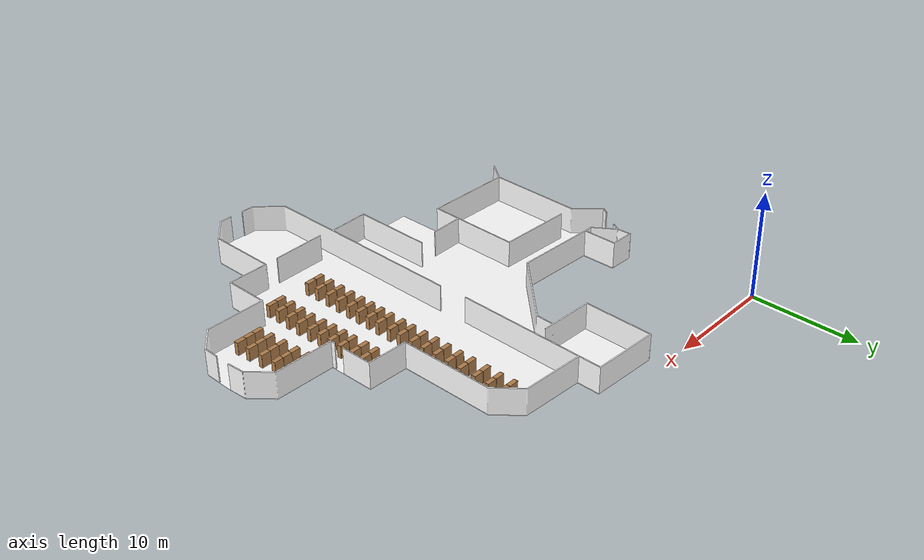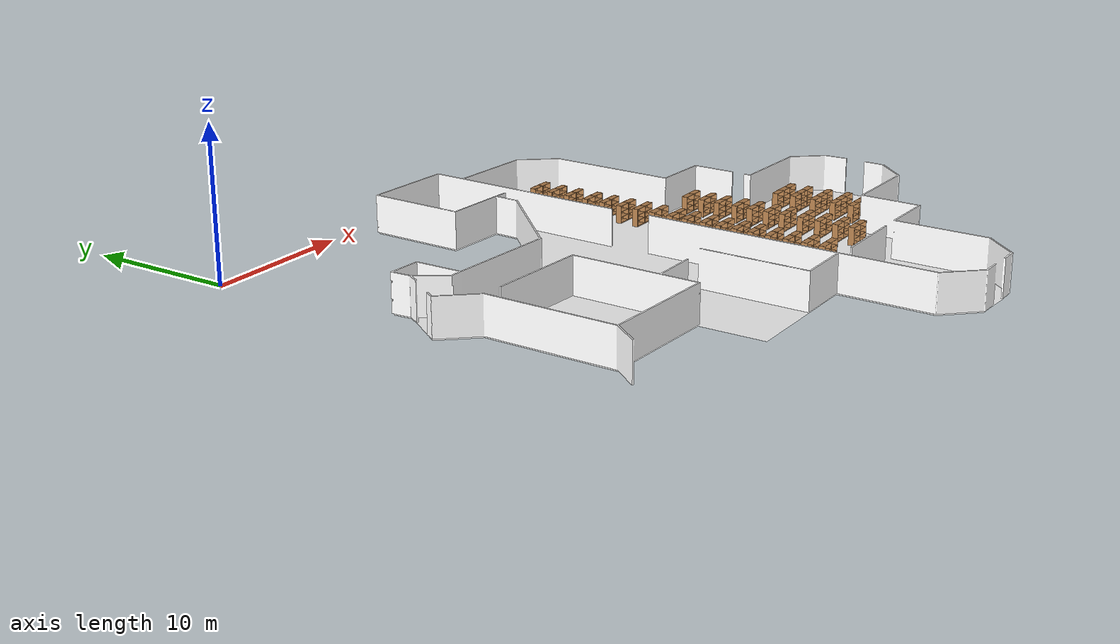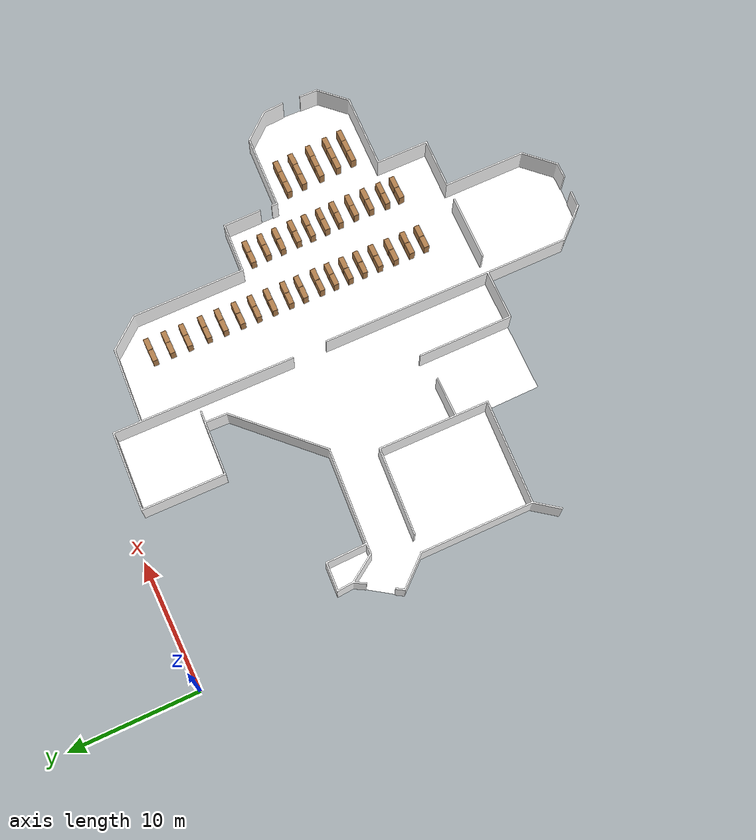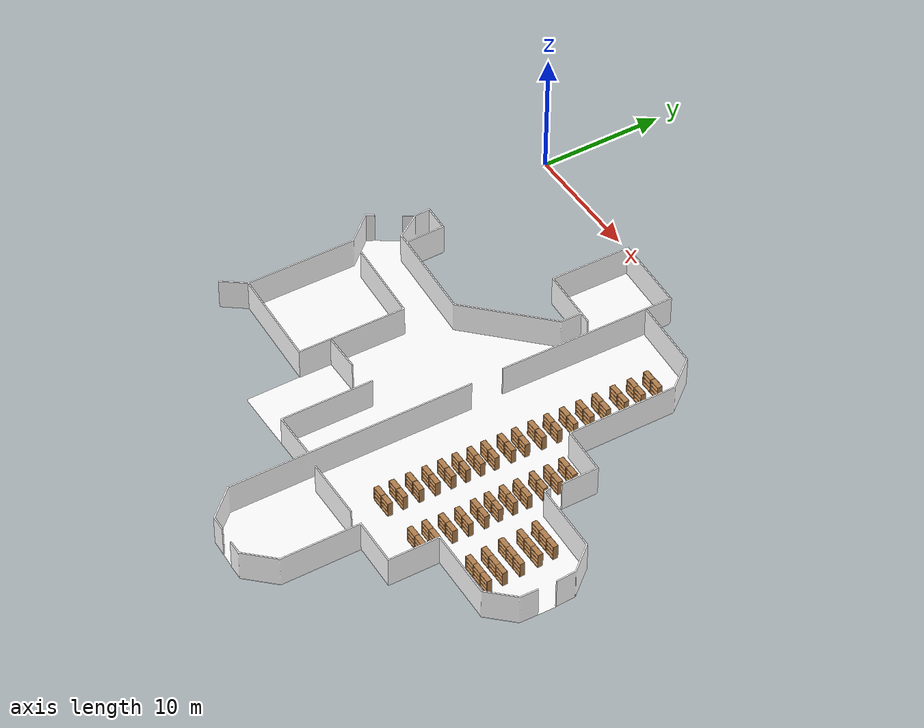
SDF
<?xml version="1.0" ?>

<sdf version="1.7">
  <world name="world">
    <scene>
      <ambient>0.8 0.8 0.8 1.0</ambient>
      <background>0 0 0</background>
      <grid>false</grid>
    </scene>
    <include>
      <uri>model://sun</uri>
    </include>
    <gui>
      <camera name="gui_camera">
        <pose>18.758678766187817 -40.49960842138499 10 0 0.6 1.57</pose>
      </camera>
      <plugin name="toggle_charging" filename="libtoggle_charging.so" />
      <plugin name="toggle_floors" filename="libtoggle_floors.so">
        <floor name="L1" model_name="libr_L1">
          <model name="OpenRobotics/Bookshelf" />
          <model name="OpenRobotics/Bookshelf_2" />
          <model name="OpenRobotics/Bookshelf_3" />
          <model name="OpenRobotics/Bookshelf_4" />
          <model name="OpenRobotics/Bookshelf_5" />
          <model name="OpenRobotics/Bookshelf_6" />
          <model name="OpenRobotics/Bookshelf_7" />
          <model name="OpenRobotics/Bookshelf_8" />
          <model name="OpenRobotics/Bookshelf_9" />
          <model name="OpenRobotics/Bookshelf_10" />
          <model name="OpenRobotics/Bookshelf_11" />
          <model name="OpenRobotics/Bookshelf_12" />
          <model name="OpenRobotics/Bookshelf_13" />
          <model name="OpenRobotics/Bookshelf_14" />
          <model name="OpenRobotics/Bookshelf_15" />
          <model name="OpenRobotics/Bookshelf_16" />
          <model name="OpenRobotics/Bookshelf_17" />
          <model name="OpenRobotics/Bookshelf_18" />
          <model name="OpenRobotics/Bookshelf_19" />
          <model name="OpenRobotics/Bookshelf_20" />
          <model name="OpenRobotics/Bookshelf_21" />
          <model name="OpenRobotics/Bookshelf_22" />
          <model name="OpenRobotics/Bookshelf_23" />
          <model name="OpenRobotics/Bookshelf_24" />
          <model name="OpenRobotics/Bookshelf_25" />
          <model name="OpenRobotics/Bookshelf_26" />
          <model name="OpenRobotics/Bookshelf_27" />
          <model name="OpenRobotics/Bookshelf_28" />
          <model name="OpenRobotics/Bookshelf_29" />
          <model name="OpenRobotics/Bookshelf_30" />
          <model name="OpenRobotics/Bookshelf_31" />
          <model name="OpenRobotics/Bookshelf_32" />
          <model name="OpenRobotics/Bookshelf_33" />
          <model name="OpenRobotics/Bookshelf_34" />
          <model name="OpenRobotics/Bookshelf_35" />
          <model name="OpenRobotics/Bookshelf_36" />
          <model name="OpenRobotics/Bookshelf_37" />
          <model name="OpenRobotics/Bookshelf_38" />
          <model name="OpenRobotics/Bookshelf_39" />
          <model name="OpenRobotics/Bookshelf_40" />
          <model name="OpenRobotics/Bookshelf_41" />
          <model name="OpenRobotics/Bookshelf_42" />
          <model name="OpenRobotics/Bookshelf_43" />
          <model name="OpenRobotics/Bookshelf_44" />
          <model name="OpenRobotics/Bookshelf_45" />
          <model name="OpenRobotics/Bookshelf_46" />
          <model name="OpenRobotics/Bookshelf_47" />
          <model name="OpenRobotics/Bookshelf_48" />
          <model name="OpenRobotics/Bookshelf_49" />
          <model name="OpenRobotics/Bookshelf_50" />
          <model name="OpenRobotics/Bookshelf_51" />
          <model name="OpenRobotics/Bookshelf_52" />
          <model name="OpenRobotics/Bookshelf_53" />
          <model name="OpenRobotics/Bookshelf_54" />
          <model name="OpenRobotics/Bookshelf_55" />
          <model name="OpenRobotics/Bookshelf_56" />
          <model name="OpenRobotics/Bookshelf_57" />
          <model name="OpenRobotics/Bookshelf_58" />
          <model name="OpenRobotics/Bookshelf_59" />
          <model name="OpenRobotics/Bookshelf_60" />
          <model name="OpenRobotics/Bookshelf_61" />
          <model name="OpenRobotics/Bookshelf_62" />
          <model name="OpenRobotics/Bookshelf_63" />
          <model name="OpenRobotics/Bookshelf_64" />
          <model name="OpenRobotics/Bookshelf_65" />
          <model name="OpenRobotics/Bookshelf_66" />
          <model name="OpenRobotics/Bookshelf_67" />
          <model name="OpenRobotics/Bookshelf_68" />
          <model name="OpenRobotics/Bookshelf_69" />
          <model name="OpenRobotics/Bookshelf_70" />
          <model name="OpenRobotics/Bookshelf_71" />
          <model name="OpenRobotics/Bookshelf_72" />
          <model name="OpenRobotics/Bookshelf_73" />
        </floor>
      </plugin>
    </gui>
    <include>
      <name>OpenRobotics/Bookshelf</name>
      <uri>model://Bookshelf</uri>
      <pose>28.467041090443733 -15.898008054667084 0.0 0 0 0.0</pose>
      <static>True</static>
    </include>
    <include>
      <name>OpenRobotics/Bookshelf_2</name>
      <uri>model://Bookshelf</uri>
      <pose>28.510822227900935 -17.1345104671964 0.0 0 0 0.0</pose>
      <static>True</static>
    </include>
    <include>
      <name>OpenRobotics/Bookshelf_3</name>
      <uri>model://Bookshelf</uri>
      <pose>28.505506946037123 -18.310516579565203 0.0 0 0 0.0</pose>
      <static>True</static>
    </include>
    <include>
      <name>OpenRobotics/Bookshelf_4</name>
      <uri>model://Bookshelf</uri>
      <pose>28.557191068370784 -19.618425607659702 0.0 0 0 0.0</pose>
      <static>True</static>
    </include>
    <include>
      <name>OpenRobotics/Bookshelf_5</name>
      <uri>model://Bookshelf</uri>
      <pose>28.53998634023265 -20.75428735437286 0.0 0 0 0.0</pose>
      <static>True</static>
    </include>
    <include>
      <name>OpenRobotics/Bookshelf_6</name>
      <uri>model://Bookshelf</uri>
      <pose>28.547609573432066 -21.934070114381743 0.0 0 0 0.0</pose>
      <static>True</static>
    </include>
    <include>
      <name>OpenRobotics/Bookshelf_7</name>
      <uri>model://Bookshelf</uri>
      <pose>28.608805252785185 -23.06608527553556 0.0 0 0 0.0035</pose>
      <static>True</static>
    </include>
    <include>
      <name>OpenRobotics/Bookshelf_8</name>
      <uri>model://Bookshelf</uri>
      <pose>28.639368123502116 -24.351054666112546 0.0 0 0 -0.0078</pose>
      <static>True</static>
    </include>
    <include>
      <name>OpenRobotics/Bookshelf_9</name>
      <uri>model://Bookshelf</uri>
      <pose>28.608805252785185 -25.605461185972604 0.0 0 0 0.006</pose>
      <static>True</static>
    </include>
    <include>
      <name>OpenRobotics/Bookshelf_10</name>
      <uri>model://Bookshelf</uri>
      <pose>28.547609573432066 -26.89043057654959 0.0 0 0 -0.0045</pose>
      <static>True</static>
    </include>
    <include>
      <name>OpenRobotics/Bookshelf_11</name>
      <uri>model://Bookshelf</uri>
      <pose>28.547609573432066 -28.02244573770341 0.0 0 0 -0.0025</pose>
      <static>True</static>
    </include>
    <include>
      <name>OpenRobotics/Bookshelf_12</name>
      <uri>model://Bookshelf</uri>
      <pose>31.55927625263667 -20.608256978956504 0.0 0 0 0.0</pose>
      <static>True</static>
    </include>
    <include>
      <name>OpenRobotics/Bookshelf_13</name>
      <uri>model://Bookshelf</uri>
      <pose>31.670897171776762 -21.87336400046345 0.0 0 0 0.0</pose>
      <static>True</static>
    </include>
    <include>
      <name>OpenRobotics/Bookshelf_14</name>
      <uri>model://Bookshelf</uri>
      <pose>31.70810414482346 -23.324505887203877 0.0 0 0 0.0</pose>
      <static>True</static>
    </include>
    <include>
      <name>OpenRobotics/Bookshelf_15</name>
      <uri>model://Bookshelf</uri>
      <pose>31.782518090916852 -24.73844080089761 0.0 0 0 0.0</pose>
      <static>True</static>
    </include>
    <include>
      <name>OpenRobotics/Bookshelf_16</name>
      <uri>model://Bookshelf</uri>
      <pose>31.857001974929506 -26.003547822404556 0.0 0 0 0.0</pose>
      <static>True</static>
    </include>
    <include>
      <name>OpenRobotics/Bookshelf_17</name>
      <uri>model://Bookshelf</uri>
      <pose>32.45231354367665 -20.608256978956504 0.0 0 0 0.0</pose>
      <static>True</static>
    </include>
    <include>
      <name>OpenRobotics/Bookshelf_18</name>
      <uri>model://Bookshelf</uri>
      <pose>32.52672748977004 -21.87336400046345 0.0 0 0 0.0</pose>
      <static>True</static>
    </include>
    <include>
      <name>OpenRobotics/Bookshelf_19</name>
      <uri>model://Bookshelf</uri>
      <pose>32.60114143586344 -23.324505887203877 0.0 0 0 0.0</pose>
      <static>True</static>
    </include>
    <include>
      <name>OpenRobotics/Bookshelf_20</name>
      <uri>model://Bookshelf</uri>
      <pose>32.67555538195683 -24.73844080089761 0.0 0 0 0.0</pose>
      <static>True</static>
    </include>
    <include>
      <name>OpenRobotics/Bookshelf_21</name>
      <uri>model://Bookshelf</uri>
      <pose>32.74996932805022 -26.003547822404556 0.0 0 0 0.0</pose>
      <static>True</static>
    </include>
    <include>
      <name>OpenRobotics/Bookshelf_22</name>
      <uri>model://Bookshelf</uri>
      <pose>33.34535083471663 -20.608256978956504 0.0 0 0 0.0</pose>
      <static>True</static>
    </include>
    <include>
      <name>OpenRobotics/Bookshelf_23</name>
      <uri>model://Bookshelf</uri>
      <pose>33.41976478081002 -21.87336400046345 0.0 0 0 0.037</pose>
      <static>True</static>
    </include>
    <include>
      <name>OpenRobotics/Bookshelf_24</name>
      <uri>model://Bookshelf</uri>
      <pose>33.494178726903414 -23.324505887203877 0.0 0 0 0.0</pose>
      <static>True</static>
    </include>
    <include>
      <name>OpenRobotics/Bookshelf_25</name>
      <uri>model://Bookshelf</uri>
      <pose>33.56859267299681 -24.73844080089761 0.0 0 0 0.0</pose>
      <static>True</static>
    </include>
    <include>
      <name>OpenRobotics/Bookshelf_26</name>
      <uri>model://Bookshelf</uri>
      <pose>33.6430066190902 -26.003547822404556 0.0 0 0 0.0</pose>
      <static>True</static>
    </include>
    <include>
      <name>OpenRobotics/Bookshelf_27</name>
      <uri>model://Bookshelf</uri>
      <pose>23.45130333482354 -17.12653754440068 0.0 0 0 -0.0129</pose>
      <static>True</static>
    </include>
    <include>
      <name>OpenRobotics/Bookshelf_28</name>
      <uri>model://Bookshelf</uri>
      <pose>24.377561137512355 -17.143672334619552 0.0 0 0 -0.0167</pose>
      <static>True</static>
    </include>
    <include>
      <name>OpenRobotics/Bookshelf_29</name>
      <uri>model://Bookshelf</uri>
      <pose>23.42689500100155 -18.265896187076873 0.0 0 0 -0.0059</pose>
      <static>True</static>
    </include>
    <include>
      <name>OpenRobotics/Bookshelf_30</name>
      <uri>model://Bookshelf</uri>
      <pose>24.318883223252623 -20.727151441699707 0.0 0 0 0.0</pose>
      <static>True</static>
    </include>
    <include>
      <name>OpenRobotics/Bookshelf_31</name>
      <uri>model://Bookshelf</uri>
      <pose>24.30601464610865 -21.893925748726097 0.0 0 0 -0.0173</pose>
      <static>True</static>
    </include>
    <include>
      <name>OpenRobotics/Bookshelf_32</name>
      <uri>model://Bookshelf</uri>
      <pose>24.276780595857677 -24.300069922971492 0.0 0 0 -0.006</pose>
      <static>True</static>
    </include>
    <include>
      <name>OpenRobotics/Bookshelf_33</name>
      <uri>model://Bookshelf</uri>
      <pose>24.21999100541798 -26.846369687415347 0.0 0 0 -0.0057</pose>
      <static>True</static>
    </include>
    <include>
      <name>OpenRobotics/Bookshelf_34</name>
      <uri>model://Bookshelf</uri>
      <pose>24.28426395321857 -23.04909036115521 0.0 0 0 0.001</pose>
      <static>True</static>
    </include>
    <include>
      <name>OpenRobotics/Bookshelf_35</name>
      <uri>model://Bookshelf</uri>
      <pose>24.23257983088491 -25.56063097972649 0.0 0 0 -0.0217</pose>
      <static>True</static>
    </include>
    <include>
      <name>OpenRobotics/Bookshelf_36</name>
      <uri>model://Bookshelf</uri>
      <pose>24.402319160930645 -14.532050553586197 0.0 0 0 0.0</pose>
      <static>True</static>
    </include>
    <include>
      <name>OpenRobotics/Bookshelf_37</name>
      <uri>model://Bookshelf</uri>
      <pose>24.38616350158142 -15.805759939162211 0.0 0 0 0.0</pose>
      <static>True</static>
    </include>
    <include>
      <name>OpenRobotics/Bookshelf_38</name>
      <uri>model://Bookshelf</uri>
      <pose>24.42525879844816 -13.24316463953061 0.0 0 0 0.0</pose>
      <static>True</static>
    </include>
    <include>
      <name>OpenRobotics/Bookshelf_39</name>
      <uri>model://Bookshelf</uri>
      <pose>24.45512228997248 -11.899027769259066 0.0 0 0 0.0</pose>
      <static>True</static>
    </include>
    <include>
      <name>OpenRobotics/Bookshelf_40</name>
      <uri>model://Bookshelf</uri>
      <pose>24.47008900469427 -10.569857613709312 0.0 0 0 0.0</pose>
      <static>True</static>
    </include>
    <include>
      <name>OpenRobotics/Bookshelf_41</name>
      <uri>model://Bookshelf</uri>
      <pose>24.477991989570732 -9.067381294231522 0.0 0 0 0.0</pose>
      <static>True</static>
    </include>
    <include>
      <name>OpenRobotics/Bookshelf_42</name>
      <uri>model://Bookshelf</uri>
      <pose>24.505967157275016 -7.686946643863669 0.0 0 0 0.0</pose>
      <static>True</static>
    </include>
    <include>
      <name>OpenRobotics/Bookshelf_43</name>
      <uri>model://Bookshelf</uri>
      <pose>24.21999100541798 -28.043916678916446 0.0 0 0 0.0</pose>
      <static>True</static>
    </include>
    <include>
      <name>OpenRobotics/Bookshelf_44</name>
      <uri>model://Bookshelf</uri>
      <pose>23.599991351171806 -7.686946643863669 0.0 0 0 0.0</pose>
      <static>True</static>
    </include>
    <include>
      <name>OpenRobotics/Bookshelf_45</name>
      <uri>model://Bookshelf</uri>
      <pose>23.55418201405604 -9.067381294231522 0.0 0 0 0.0</pose>
      <static>True</static>
    </include>
    <include>
      <name>OpenRobotics/Bookshelf_46</name>
      <uri>model://Bookshelf</uri>
      <pose>23.540544119800202 -10.571955751287133 0.0 0 0 0.0</pose>
      <static>True</static>
    </include>
    <include>
      <name>OpenRobotics/Bookshelf_47</name>
      <uri>model://Bookshelf</uri>
      <pose>23.529214176879968 -11.899027769259066 0.0 0 0 0.0</pose>
      <static>True</static>
    </include>
    <include>
      <name>OpenRobotics/Bookshelf_48</name>
      <uri>model://Bookshelf</uri>
      <pose>23.499350685355644 -13.24316463953061 0.0 0 0 0.0</pose>
      <static>True</static>
    </include>
    <include>
      <name>OpenRobotics/Bookshelf_49</name>
      <uri>model://Bookshelf</uri>
      <pose>24.342102612447178 -19.599752183217095 0.0 0 0 0.0</pose>
      <static>True</static>
    </include>
    <include>
      <name>OpenRobotics/Bookshelf_50</name>
      <uri>model://Bookshelf</uri>
      <pose>23.469417255912063 -14.532050553586197 0.0 0 0 0.0</pose>
      <static>True</static>
    </include>
    <include>
      <name>OpenRobotics/Bookshelf_51</name>
      <uri>model://Bookshelf</uri>
      <pose>23.45130333482354 -15.805759939162211 0.0 0 0 0.0</pose>
      <static>True</static>
    </include>
    <include>
      <name>OpenRobotics/Bookshelf_52</name>
      <uri>model://Bookshelf</uri>
      <pose>24.360426347293483 -18.267155069623563 0.0 0 0 0.0</pose>
      <static>True</static>
    </include>
    <include>
      <name>OpenRobotics/Bookshelf_53</name>
      <uri>model://Bookshelf</uri>
      <pose>23.41066940373307 -19.599752183217095 0.0 0 0 0.0</pose>
      <static>True</static>
    </include>
    <include>
      <name>OpenRobotics/Bookshelf_54</name>
      <uri>model://Bookshelf</uri>
      <pose>23.391786165532675 -20.724353924929275 0.0 0 0 0.0</pose>
      <static>True</static>
    </include>
    <include>
      <name>OpenRobotics/Bookshelf_55</name>
      <uri>model://Bookshelf</uri>
      <pose>23.362831866958743 -21.892526990340883 0.0 0 0 0.0</pose>
      <static>True</static>
    </include>
    <include>
      <name>OpenRobotics/Bookshelf_56</name>
      <uri>model://Bookshelf</uri>
      <pose>23.352411116988897 -23.05321669839159 0.0 0 0 0.0</pose>
      <static>True</static>
    </include>
    <include>
      <name>OpenRobotics/Bookshelf_57</name>
      <uri>model://Bookshelf</uri>
      <pose>23.299817801704844 -25.56063097972649 0.0 0 0 0.0</pose>
      <static>True</static>
    </include>
    <include>
      <name>OpenRobotics/Bookshelf_58</name>
      <uri>model://Bookshelf</uri>
      <pose>23.337584278105627 -24.30013986089075 0.0 0 0 0.0</pose>
      <static>True</static>
    </include>
    <include>
      <name>OpenRobotics/Bookshelf_59</name>
      <uri>model://Bookshelf</uri>
      <pose>23.28715903831866 -26.846369687415347 0.0 0 0 0.0</pose>
      <static>True</static>
    </include>
    <include>
      <name>OpenRobotics/Bookshelf_60</name>
      <uri>model://Bookshelf</uri>
      <pose>23.28715903831866 -28.043916678916446 0.0 0 0 0.0</pose>
      <static>True</static>
    </include>
    <include>
      <name>OpenRobotics/Bookshelf_61</name>
      <uri>model://Bookshelf</uri>
      <pose>27.547567265923206 -15.898008054667084 0.0 0 0 0.0</pose>
      <static>True</static>
    </include>
    <include>
      <name>OpenRobotics/Bookshelf_62</name>
      <uri>model://Bookshelf</uri>
      <pose>27.597992505710174 -17.1345104671964 0.0 0 0 0.0</pose>
      <static>True</static>
    </include>
    <include>
      <name>OpenRobotics/Bookshelf_63</name>
      <uri>model://Bookshelf</uri>
      <pose>27.576241812820093 -18.310516579565203 0.0 0 0 0.0</pose>
      <static>True</static>
    </include>
    <include>
      <name>OpenRobotics/Bookshelf_64</name>
      <uri>model://Bookshelf</uri>
      <pose>27.627855997234494 -19.618425607659702 0.0 0 0 0.0</pose>
      <static>True</static>
    </include>
    <include>
      <name>OpenRobotics/Bookshelf_65</name>
      <uri>model://Bookshelf</uri>
      <pose>27.610651269096362 -20.75428735437286 0.0 0 0 0.0</pose>
      <static>True</static>
    </include>
    <include>
      <name>OpenRobotics/Bookshelf_66</name>
      <uri>model://Bookshelf</uri>
      <pose>27.629744321054535 -21.934070114381743 0.0 0 0 0.0</pose>
      <static>True</static>
    </include>
    <include>
      <name>OpenRobotics/Bookshelf_67</name>
      <uri>model://Bookshelf</uri>
      <pose>27.690940000407654 -23.06608527553556 0.0 0 0 0.0</pose>
      <static>True</static>
    </include>
    <include>
      <name>OpenRobotics/Bookshelf_68</name>
      <uri>model://Bookshelf</uri>
      <pose>27.752135679760773 -24.351054666112546 0.0 0 0 0.0</pose>
      <static>True</static>
    </include>
    <include>
      <name>OpenRobotics/Bookshelf_69</name>
      <uri>model://Bookshelf</uri>
      <pose>27.690940000407654 -25.605461185972604 0.0 0 0 0.0</pose>
      <static>True</static>
    </include>
    <include>
      <name>OpenRobotics/Bookshelf_70</name>
      <uri>model://Bookshelf</uri>
      <pose>27.629744321054535 -26.89043057654959 0.0 0 0 0.0</pose>
      <static>True</static>
    </include>
    <include>
      <name>OpenRobotics/Bookshelf_71</name>
      <uri>model://Bookshelf</uri>
      <pose>27.629744321054535 -28.02244573770341 0.0 0 0 0.0</pose>
      <static>True</static>
    </include>
    <include>
      <name>OpenRobotics/Bookshelf_72</name>
      <uri>model://Bookshelf</uri>
      <pose>23.591948490456822 -6.306302179738034 0.0 0 0 0.0001</pose>
      <static>True</static>
    </include>
    <include>
      <name>OpenRobotics/Bookshelf_73</name>
      <uri>model://Bookshelf</uri>
      <pose>24.522682319978323 -6.306302179738034 0.0 0 0 -0.0052</pose>
      <static>True</static>
    </include>
    <include>
      <name>libr_L1</name>
      <uri>model://libr_L1</uri>
      <pose>0 0 0.0 0 0 0</pose>
    </include>
    <rmf_charger_waypoints name="charger_waypoints">
      <rmf_vertex name="stop" x="19.537647310913588" y="-24.8993679531165" level="L1" />
      <rmf_vertex name="start" x="19.808027306775482" y="-4.397696363113314" level="L1" />
      <rmf_vertex name="start_2" x="12.619178523886575" y="-23.204842107348803" level="L1" />
    </rmf_charger_waypoints>
  </world>
</sdf>

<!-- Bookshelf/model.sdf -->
<sdf version="1.5">
    <model name="bookshelf">
        <static>true</static>
        <link name="link">
            <inertial>
                <mass>1.0</mass>
            </inertial>
            <collision name="back">
                <pose>0 0.005 0.6 0 0 0</pose>
                <geometry>
                    <box>
                        <size>0.9 0.01 1.2</size>
                    </box>
                </geometry>
            </collision>
            <visual name="visual1">
                <pose>0 0.005 0.6 0 0 0</pose>
                <geometry>
                    <box>
                        <size>0.9 0.01 1.2</size>
                    </box>
                </geometry>
                <material>
                    <diffuse>1.0 1.0 1.0</diffuse>
                    <script>
                        <uri>file://media/materials/scripts/gazebo.material</uri>
                        <name>Gazebo/Wood</name>
                    </script>

                    <pbr>
                        <metal>
                            <albedo_map>https://fuel.ignitionrobotics.org/1.0/openrobotics/models/bookshelf/3/files/bookshelf_diffuse.jpg</albedo_map>
                        </metal>
                    </pbr>
                </material>
            </visual>
            <collision name="left_side">
                <pose>0.45 -0.195 0.6 0 0 0</pose>
                <geometry>
                    <box>
                        <size>0.02 0.4 1.2</size>
                    </box>
                </geometry>
            </collision>
            <visual name="visual2">
                <pose>0.45 -0.195 0.6 0 0 0</pose>
                <geometry>
                    <box>
                        <size>0.02 0.4 1.2</size>
                    </box>
                </geometry>
                <material>
                    <diffuse>1.0 1.0 1.0</diffuse>
                    <script>
                        <uri>file://media/materials/scripts/gazebo.material</uri>
                        <name>Gazebo/Wood</name>
                    </script>

                    <pbr>
                        <metal>
                            <albedo_map>https://fuel.ignitionrobotics.org/1.0/openrobotics/models/bookshelf/3/files/bookshelf_diffuse.jpg</albedo_map>
                        </metal>
                    </pbr>
                </material>
            </visual>
            <collision name="right_side">
                <pose>-0.45 -0.195 0.6 0 0 0</pose>
                <geometry>
                    <box>
                        <size>0.02 0.4 1.2</size>
                    </box>
                </geometry>
            </collision>
            <visual name="visual3">
                <pose>-0.45 -0.195 0.6 0 0 0</pose>
                <geometry>
                    <box>
                        <size>0.02 0.4 1.2</size>
                    </box>
                </geometry>
                <material>
                    <diffuse>1.0 1.0 1.0</diffuse>
                    <script>
                        <uri>file://media/materials/scripts/gazebo.material</uri>
                        <name>Gazebo/Wood</name>
                    </script>

                    <pbr>
                        <metal>
                            <albedo_map>https://fuel.ignitionrobotics.org/1.0/openrobotics/models/bookshelf/3/files/bookshelf_diffuse.jpg</albedo_map>
                        </metal>
                    </pbr>
                </material>
            </visual>
            <collision name="bottom">
                <pose>0 -0.195 0.03 0 0 0</pose>
                <geometry>
                    <box>
                        <size>0.88 0.4 0.06</size>
                    </box>
                </geometry>
            </collision>
            <visual name="visual4">
                <pose>0 -0.195 0.03 0 0 0</pose>
                <geometry>
                    <box>
                        <size>0.88 0.4 0.06</size>
                    </box>
                </geometry>
                <material>
                    <diffuse>1.0 1.0 1.0</diffuse>
                    <script>
                        <uri>file://media/materials/scripts/gazebo.material</uri>
                        <name>Gazebo/Wood</name>
                    </script>

                    <pbr>
                        <metal>
                            <albedo_map>https://fuel.ignitionrobotics.org/1.0/openrobotics/models/bookshelf/3/files/bookshelf_diffuse.jpg</albedo_map>
                        </metal>
                    </pbr>
                </material>
            </visual>
            <collision name="top">
                <pose>0 -0.195 1.19 0 0 0</pose>
                <geometry>
                    <box>
                        <size>0.88 0.4 0.02</size>
                    </box>
                </geometry>
            </collision>
            <visual name="visual5">
                <pose>0 -0.195 1.19 0 0 0</pose>
                <geometry>
                    <box>
                        <size>0.88 0.4 0.02</size>
                    </box>
                </geometry>
                <material>
                    <diffuse>1.0 1.0 1.0</diffuse>
                    <script>
                        <uri>file://media/materials/scripts/gazebo.material</uri>
                        <name>Gazebo/Wood</name>
                    </script>

                    <pbr>
                        <metal>
                            <albedo_map>https://fuel.ignitionrobotics.org/1.0/openrobotics/models/bookshelf/3/files/bookshelf_diffuse.jpg</albedo_map>
                        </metal>
                    </pbr>
                </material>
            </visual>
            <collision name="low_shelf">
                <pose>0 -0.195 0.43 0 0 0</pose>
                <geometry>
                    <box>
                        <size>0.88 0.4 0.02</size>
                    </box>
                </geometry>
            </collision>
            <visual name="visual6">
                <pose>0 -0.195 0.43 0 0 0</pose>
                <geometry>
                    <box>
                        <size>0.88 0.4 0.02</size>
                    </box>
                </geometry>
                <material>
                    <diffuse>1.0 1.0 1.0</diffuse>
                    <script>
                        <uri>file://media/materials/scripts/gazebo.material</uri>
                        <name>Gazebo/Wood</name>
                    </script>

                    <pbr>
                        <metal>
                            <albedo_map>https://fuel.ignitionrobotics.org/1.0/openrobotics/models/bookshelf/3/files/bookshelf_diffuse.jpg</albedo_map>
                        </metal>
                    </pbr>
                </material>
            </visual>
            <collision name="high_shelf">
                <pose>0 -0.195 0.8 0 0 0</pose>
                <geometry>
                    <box>
                        <size>0.88 0.4 0.02</size>
                    </box>
                </geometry>
            </collision>
            <visual name="visual7">
                <pose>0 -0.195 0.8 0 0 0</pose>
                <geometry>
                    <box>
                        <size>0.88 0.4 0.02</size>
                    </box>
                </geometry>
                <material>
                    <diffuse>1.0 1.0 1.0</diffuse>
                    <script>
                        <uri>file://media/materials/scripts/gazebo.material</uri>
                        <name>Gazebo/Wood</name>
                    </script>

                    <pbr>
                        <metal>
                            <albedo_map>https://fuel.ignitionrobotics.org/1.0/openrobotics/models/bookshelf/3/files/bookshelf_diffuse.jpg</albedo_map>
                        </metal>
                    </pbr>
                </material>
            </visual>
        </link>
    </model>
</sdf>

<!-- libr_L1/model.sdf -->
<sdf version="1.7">
  <model name="libr_L1">
    <static>true</static>
    <link name="floor_1">
      <visual name="visual">
        <geometry>
          <mesh>
            <uri>model://libr_L1/meshes/floor_1.obj</uri>
          </mesh>
        </geometry>
        <material>
          <diffuse>1.0 1.0 1.0</diffuse>
          <specular>0.1 0.1 0.1</specular>
          <pbr>
            <metal>
              <metalness>0.0</metalness>
              <albedo_map>model://libr_L1/meshes/blue_linoleum.png</albedo_map>
            </metal>
          </pbr>
          <script>
            <uri>model://libr_L1/meshes/</uri>
            <name>floor_1_Diffuse</name>
          </script>
        </material>
      </visual>
      <collision name="collision">
        <geometry>
          <mesh>
            <uri>model://libr_L1/meshes/floor_1.obj</uri>
          </mesh>
        </geometry>
        <surface>
          <contact>
            <collide_bitmask>0x01</collide_bitmask>
          </contact>
        </surface>
      </collision>
    </link>
    <link name="wall_1">
      <visual name="wall_1">
        <geometry>
          <mesh>
            <uri>model://libr_L1/meshes/wall_1.obj</uri>
          </mesh>
        </geometry>
        <transparency>0.0</transparency>
        <material>
          <diffuse>1.0 1.0 1.0</diffuse>
          <specular>0.1 0.1 0.1</specular>
          <pbr>
            <metal>
              <metalness>0.0</metalness>
              <albedo_map>model://libr_L1/meshes/default.png</albedo_map>
            </metal>
          </pbr>
          <script>
            <uri>model://libr_L1/meshes/</uri>
            <name>wall_1_Diffuse</name>
          </script>
        </material>
      </visual>
      <collision name="collision">
        <geometry>
          <mesh>
            <uri>model://libr_L1/meshes/wall_1.obj</uri>
          </mesh>
        </geometry>
        <surface>
          <contact>
            <collide_bitmask>0x01</collide_bitmask>
          </contact>
        </surface>
      </collision>
      <pose>0.0907771502613759 -39.72708109901405 0 0 0 0</pose>
    </link>
  </model>
</sdf>
